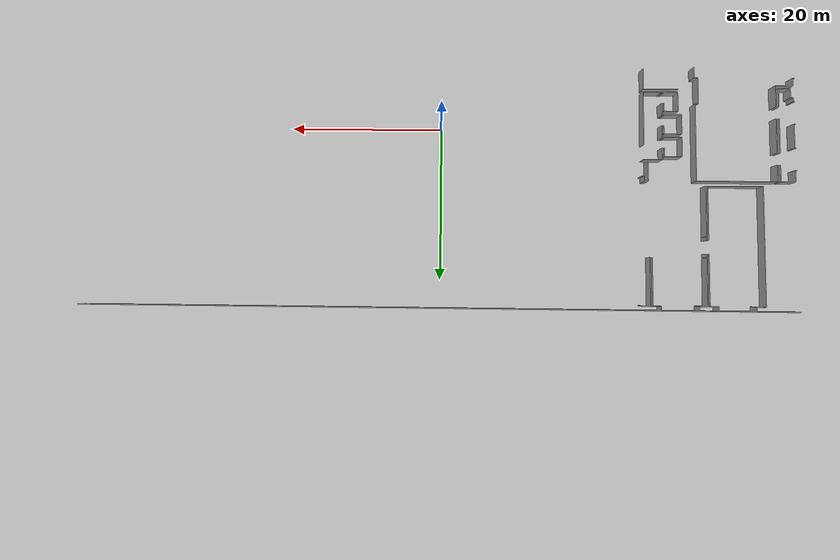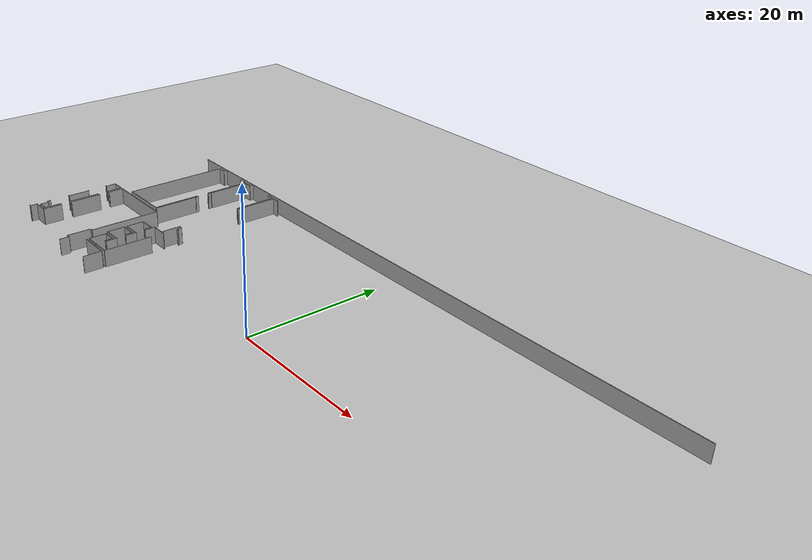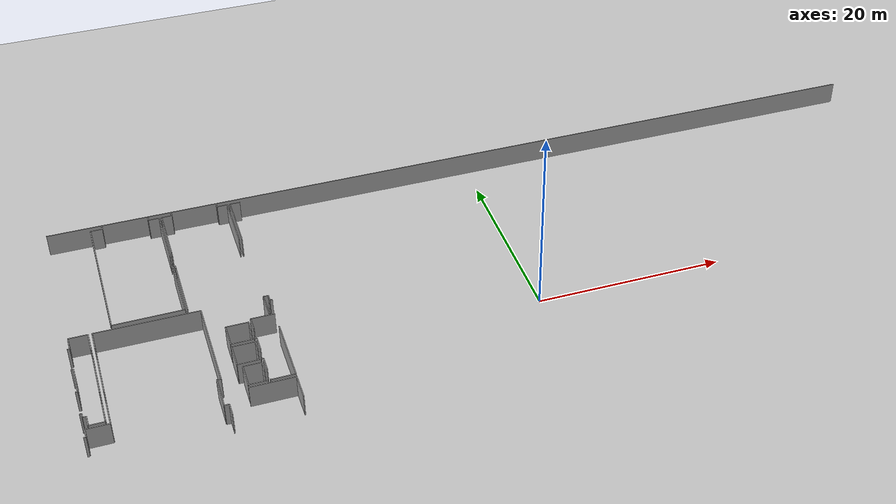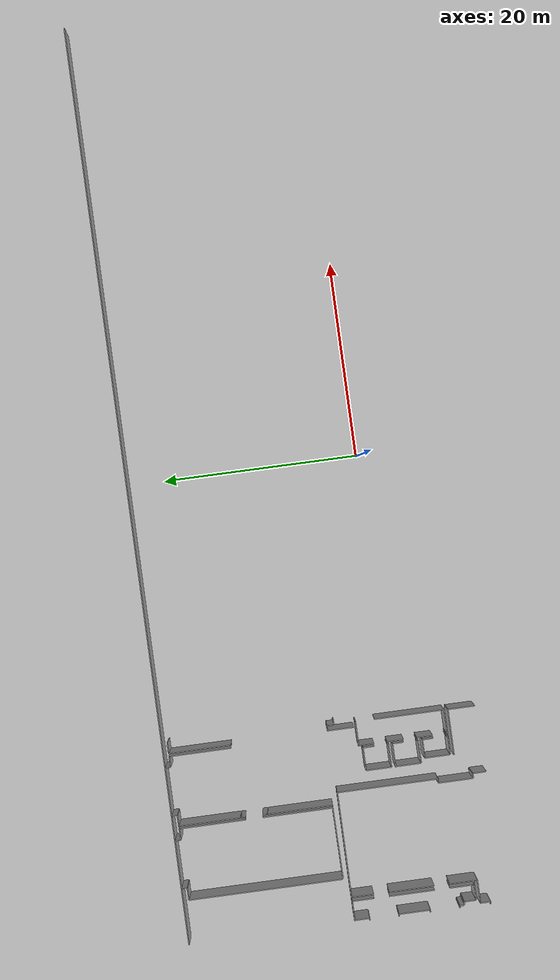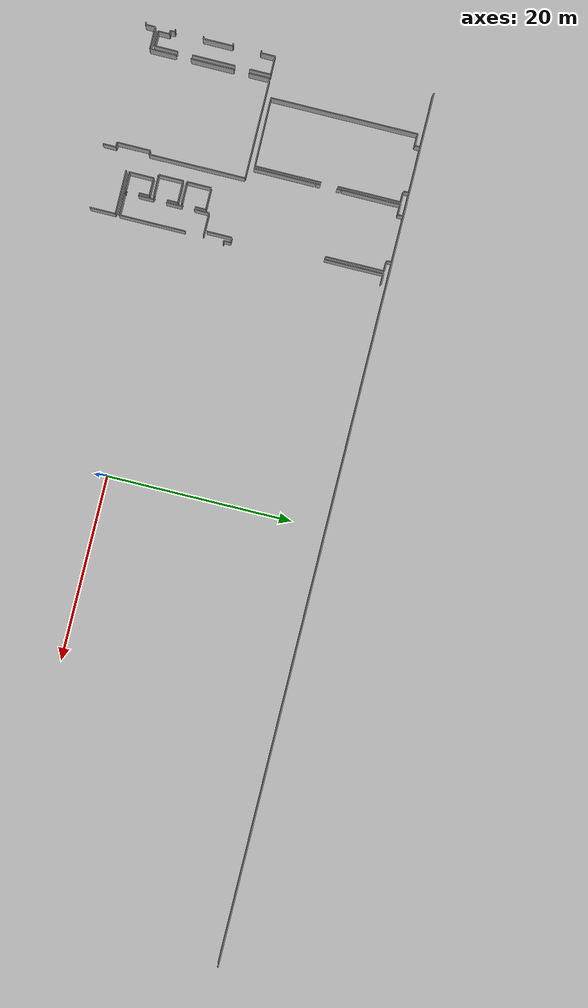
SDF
<sdf version="1.6">
 <world name="default">
  <model name="ground_plane">
   <static>1</static>
   <link name="link">
    <collision name="collision">
     <geometry><plane><normal>0 0 1</normal><size>100 100</size></plane></geometry>
     <surface><friction><ode><mu>100</mu><mu2>50</mu2></ode></friction></surface>
    </collision>
    <visual name="visual">
     <cast_shadows>0</cast_shadows>
     <geometry><plane><normal>0 0 1</normal><size>100 100</size></plane></geometry>
     <material>
      <script><uri>file://media/materials/scripts/gazebo.material</uri><name>Gazebo/Grey</name></script>
     </material>
    </visual>
   </link>
  </model>
  <model name="50045229">
   <static>1</static>
   <link name="Wall_0">
    <collision name="Wall_0_Collision">
     <geometry><box><size>15.8074096638 0.1 2.5</size></box></geometry>
     <pose>7.90370483189 0 1.25 0 0 0</pose>
    </collision>
    <visual name="Wall_0_Visual">
     <pose>7.90370483189 0 1.25 0 0 0</pose>
     <geometry><box><size>15.8074096638 0.1 2.5</size></box></geometry>
     <material>
      <script><uri>file://media/materials/scripts/gazebo.material</uri><name>Gazebo/Grey</name></script>
      <ambient>1 1 1 1</ambient>
     </material>
    </visual>
    <pose>4.53489700339 -16.4062242191 0 0 0 1.57079632679</pose>
   </link>
   <link name="Wall_1">
    <collision name="Wall_1_Collision">
     <geometry><box><size>1.24471690211 0.1 2.5</size></box></geometry>
     <pose>0.622358451053 0 1.25 0 0 0</pose>
    </collision>
    <visual name="Wall_1_Visual">
     <pose>0.622358451053 0 1.25 0 0 0</pose>
     <geometry><box><size>1.24471690211 0.1 2.5</size></box></geometry>
     <material>
      <script><uri>file://media/materials/scripts/gazebo.material</uri><name>Gazebo/Grey</name></script>
      <ambient>1 1 1 1</ambient>
     </material>
    </visual>
    <pose>4.53489700339 -0.598814555331 0 0 0 0.0</pose>
   </link>
   <link name="Wall_2">
    <collision name="Wall_2_Collision">
     <geometry><box><size>0.562895835713 0.1 2.5</size></box></geometry>
     <pose>0.281447917857 0 1.25 0 0 0</pose>
    </collision>
    <visual name="Wall_2_Visual">
     <pose>0.281447917857 0 1.25 0 0 0</pose>
     <geometry><box><size>0.562895835713 0.1 2.5</size></box></geometry>
     <material>
      <script><uri>file://media/materials/scripts/gazebo.material</uri><name>Gazebo/Grey</name></script>
      <ambient>1 1 1 1</ambient>
     </material>
    </visual>
    <pose>5.77961390549 -0.598814555331 0 0 0 1.57079632679</pose>
   </link>
   <link name="Wall_3">
    <collision name="Wall_3_Collision">
     <geometry><box><size>0.573937986267 0.1 2.5</size></box></geometry>
     <pose>0.286968993134 0 1.25 0 0 0</pose>
    </collision>
    <visual name="Wall_3_Visual">
     <pose>0.286968993134 0 1.25 0 0 0</pose>
     <geometry><box><size>0.573937986267 0.1 2.5</size></box></geometry>
     <material>
      <script><uri>file://media/materials/scripts/gazebo.material</uri><name>Gazebo/Grey</name></script>
      <ambient>1 1 1 1</ambient>
     </material>
    </visual>
    <pose>10.6908324766 -0.0359187196182 0 0 0 -1.57079632679</pose>
   </link>
   <link name="Wall_4">
    <collision name="Wall_4_Collision">
     <geometry><box><size>1.15891812309 0.1 2.5</size></box></geometry>
     <pose>0.579459061544 0 1.25 0 0 0</pose>
    </collision>
    <visual name="Wall_4_Visual">
     <pose>0.579459061544 0 1.25 0 0 0</pose>
     <geometry><box><size>1.15891812309 0.1 2.5</size></box></geometry>
     <material>
      <script><uri>file://media/materials/scripts/gazebo.material</uri><name>Gazebo/Grey</name></script>
      <ambient>1 1 1 1</ambient>
     </material>
    </visual>
    <pose>10.6908324766 -0.609856705885 0 0 0 0.0</pose>
   </link>
   <link name="Wall_5">
    <collision name="Wall_5_Collision">
     <geometry><box><size>6.79638020536 0.1 2.5</size></box></geometry>
     <pose>3.39819010268 0 1.25 0 0 0</pose>
    </collision>
    <visual name="Wall_5_Visual">
     <pose>3.39819010268 0 1.25 0 0 0</pose>
     <geometry><box><size>6.79638020536 0.1 2.5</size></box></geometry>
     <material>
      <script><uri>file://media/materials/scripts/gazebo.material</uri><name>Gazebo/Grey</name></script>
      <ambient>1 1 1 1</ambient>
     </material>
    </visual>
    <pose>11.8497505997 -0.609856705885 0 0 0 -1.57079632679</pose>
   </link>
   <link name="Wall_6">
    <collision name="Wall_6_Collision">
     <geometry><box><size>7.14858673165 0.1 2.5</size></box></geometry>
     <pose>3.57429336583 0 1.25 0 0 0</pose>
    </collision>
    <visual name="Wall_6_Visual">
     <pose>3.57429336583 0 1.25 0 0 0</pose>
     <geometry><box><size>7.14858673165 0.1 2.5</size></box></geometry>
     <material>
      <script><uri>file://media/materials/scripts/gazebo.material</uri><name>Gazebo/Grey</name></script>
      <ambient>1 1 1 1</ambient>
     </material>
    </visual>
    <pose>11.8497505997 -9.18846539492 0 0 0 -1.57079632679</pose>
   </link>
   <link name="Wall_7">
    <collision name="Wall_7_Collision">
     <geometry><box><size>7.31518064807 0.1 2.5</size></box></geometry>
     <pose>3.65759032404 0 1.25 0 0 0</pose>
    </collision>
    <visual name="Wall_7_Visual">
     <pose>3.65759032404 0 1.25 0 0 0</pose>
     <geometry><box><size>7.31518064807 0.1 2.5</size></box></geometry>
     <material>
      <script><uri>file://media/materials/scripts/gazebo.material</uri><name>Gazebo/Grey</name></script>
      <ambient>1 1 1 1</ambient>
     </material>
    </visual>
    <pose>11.8497505997 -16.3370521266 0 0 0 -3.13213654762</pose>
   </link>
   <link name="Wall_8">
    <collision name="Wall_8_Collision">
     <geometry><box><size>0.4605972915 0.1 2.5</size></box></geometry>
     <pose>0.23029864575 0 1.25 0 0 0</pose>
    </collision>
    <visual name="Wall_8_Visual">
     <pose>0.23029864575 0 1.25 0 0 0</pose>
     <geometry><box><size>0.4605972915 0.1 2.5</size></box></geometry>
     <material>
      <script><uri>file://media/materials/scripts/gazebo.material</uri><name>Gazebo/Grey</name></script>
      <ambient>1 1 1 1</ambient>
     </material>
    </visual>
    <pose>12.0963586287 -9.66277018366 0 0 0 1.57079632679</pose>
   </link>
   <link name="Wall_9">
    <collision name="Wall_9_Collision">
     <geometry><box><size>0.437878384038 0.1 2.5</size></box></geometry>
     <pose>0.218939192019 0 1.25 0 0 0</pose>
    </collision>
    <visual name="Wall_9_Visual">
     <pose>0.218939192019 0 1.25 0 0 0</pose>
     <geometry><box><size>0.437878384038 0.1 2.5</size></box></geometry>
     <material>
      <script><uri>file://media/materials/scripts/gazebo.material</uri><name>Gazebo/Grey</name></script>
      <ambient>1 1 1 1</ambient>
     </material>
    </visual>
    <pose>12.0963586287 -7.44431329246 0 0 0 1.57079632679</pose>
   </link>
   <link name="Wall_30">
    <collision name="Wall_30_Collision">
     <geometry><box><size>6.31687164452 0.1 2.5</size></box></geometry>
     <pose>3.15843582226 0 1.25 0 0 0</pose>
    </collision>
    <visual name="Wall_30_Visual">
     <pose>3.15843582226 0 1.25 0 0 0</pose>
     <geometry><box><size>6.31687164452 0.1 2.5</size></box></geometry>
     <material>
      <script><uri>file://media/materials/scripts/gazebo.material</uri><name>Gazebo/Grey</name></script>
      <ambient>1 1 1 1</ambient>
     </material>
    </visual>
    <pose>12.1024508497 -6.91568619985 0 0 0 1.57079632679</pose>
   </link>
   <link name="Wall_31">
    <collision name="Wall_31_Collision">
     <geometry><box><size>1.10472274048 0.1 2.5</size></box></geometry>
     <pose>0.552361370242 0 1.25 0 0 0</pose>
    </collision>
    <visual name="Wall_31_Visual">
     <pose>0.552361370242 0 1.25 0 0 0</pose>
     <geometry><box><size>1.10472274048 0.1 2.5</size></box></geometry>
     <material>
      <script><uri>file://media/materials/scripts/gazebo.material</uri><name>Gazebo/Grey</name></script>
      <ambient>1 1 1 1</ambient>
     </material>
    </visual>
    <pose>12.1024508497 -0.598814555331 0 0 0 0.0</pose>
   </link>
   <link name="Wall_32">
    <collision name="Wall_32_Collision">
     <geometry><box><size>0.562895835713 0.1 2.5</size></box></geometry>
     <pose>0.281447917857 0 1.25 0 0 0</pose>
    </collision>
    <visual name="Wall_32_Visual">
     <pose>0.281447917857 0 1.25 0 0 0</pose>
     <geometry><box><size>0.562895835713 0.1 2.5</size></box></geometry>
     <material>
      <script><uri>file://media/materials/scripts/gazebo.material</uri><name>Gazebo/Grey</name></script>
      <ambient>1 1 1 1</ambient>
     </material>
    </visual>
    <pose>13.2071735902 -0.598814555331 0 0 0 1.57079632679</pose>
   </link>
   <link name="Wall_33">
    <collision name="Wall_33_Collision">
     <geometry><box><size>0.538400030461 0.1 2.5</size></box></geometry>
     <pose>0.269200015231 0 1.25 0 0 0</pose>
    </collision>
    <visual name="Wall_33_Visual">
     <pose>0.269200015231 0 1.25 0 0 0</pose>
     <geometry><box><size>0.538400030461 0.1 2.5</size></box></geometry>
     <material>
      <script><uri>file://media/materials/scripts/gazebo.material</uri><name>Gazebo/Grey</name></script>
      <ambient>1 1 1 1</ambient>
     </material>
    </visual>
    <pose>18.1521532194 -0.0359187196182 0 0 0 -1.57079632679</pose>
   </link>
   <link name="Wall_34">
    <collision name="Wall_34_Collision">
     <geometry><box><size>1.10358044905 0.1 2.5</size></box></geometry>
     <pose>0.551790224524 0 1.25 0 0 0</pose>
    </collision>
    <visual name="Wall_34_Visual">
     <pose>0.551790224524 0 1.25 0 0 0</pose>
     <geometry><box><size>1.10358044905 0.1 2.5</size></box></geometry>
     <material>
      <script><uri>file://media/materials/scripts/gazebo.material</uri><name>Gazebo/Grey</name></script>
      <ambient>1 1 1 1</ambient>
     </material>
    </visual>
    <pose>18.1521532194 -0.574318750079 0 0 0 0.0</pose>
   </link>
   <link name="Wall_35">
    <collision name="Wall_35_Collision">
     <geometry><box><size>6.33667136275 0.1 2.5</size></box></geometry>
     <pose>3.16833568138 0 1.25 0 0 0</pose>
    </collision>
    <visual name="Wall_35_Visual">
     <pose>3.16833568138 0 1.25 0 0 0</pose>
     <geometry><box><size>6.33667136275 0.1 2.5</size></box></geometry>
     <material>
      <script><uri>file://media/materials/scripts/gazebo.material</uri><name>Gazebo/Grey</name></script>
      <ambient>1 1 1 1</ambient>
     </material>
    </visual>
    <pose>19.2557336684 -0.574318750079 0 0 0 -1.57079632679</pose>
   </link>
   <link name="Wall_36">
    <collision name="Wall_36_Collision">
     <geometry><box><size>6.35494802574 0.1 2.5</size></box></geometry>
     <pose>3.17747401287 0 1.25 0 0 0</pose>
    </collision>
    <visual name="Wall_36_Visual">
     <pose>3.17747401287 0 1.25 0 0 0</pose>
     <geometry><box><size>6.35494802574 0.1 2.5</size></box></geometry>
     <material>
      <script><uri>file://media/materials/scripts/gazebo.material</uri><name>Gazebo/Grey</name></script>
      <ambient>1 1 1 1</ambient>
     </material>
    </visual>
    <pose>19.547144906 -6.92825140565 0 0 0 1.57079632679</pose>
   </link>
   <link name="Wall_37">
    <collision name="Wall_37_Collision">
     <geometry><box><size>1.09647285789 0.1 2.5</size></box></geometry>
     <pose>0.548236428943 0 1.25 0 0 0</pose>
    </collision>
    <visual name="Wall_37_Visual">
     <pose>0.548236428943 0 1.25 0 0 0</pose>
     <geometry><box><size>1.09647285789 0.1 2.5</size></box></geometry>
     <material>
      <script><uri>file://media/materials/scripts/gazebo.material</uri><name>Gazebo/Grey</name></script>
      <ambient>1 1 1 1</ambient>
     </material>
    </visual>
    <pose>19.547144906 -0.573303379913 0 0 0 0.0</pose>
   </link>
   <link name="Wall_133">
    <collision name="Wall_133_Collision">
     <geometry><box><size>6.6374747744 0.1 2.5</size></box></geometry>
     <pose>3.3187373872 0 1.25 0 0 0</pose>
    </collision>
    <visual name="Wall_133_Visual">
     <pose>3.3187373872 0 1.25 0 0 0</pose>
     <geometry><box><size>6.6374747744 0.1 2.5</size></box></geometry>
     <material>
      <script><uri>file://media/materials/scripts/gazebo.material</uri><name>Gazebo/Grey</name></script>
      <ambient>1 1 1 1</ambient>
     </material>
    </visual>
    <pose>12.0963586287 -16.3615479318 0 0 0 1.57079632679</pose>
   </link>
   <link name="Wall_136">
    <collision name="Wall_136_Collision">
     <geometry><box><size>1.23050171978 0.1 2.5</size></box></geometry>
     <pose>0.615250859892 0 1.25 0 0 0</pose>
    </collision>
    <visual name="Wall_136_Visual">
     <pose>0.615250859892 0 1.25 0 0 0</pose>
     <geometry><box><size>1.23050171978 0.1 2.5</size></box></geometry>
     <material>
      <script><uri>file://media/materials/scripts/gazebo.material</uri><name>Gazebo/Grey</name></script>
      <ambient>1 1 1 1</ambient>
     </material>
    </visual>
    <pose>0.603383721078 -29.514779982 0 0 0 1.57079632679</pose>
   </link>
   <link name="Wall_137">
    <collision name="Wall_137_Collision">
     <geometry><box><size>0.352841132645 0.1 2.5</size></box></geometry>
     <pose>0.176420566323 0 1.25 0 0 0</pose>
    </collision>
    <visual name="Wall_137_Visual">
     <pose>0.176420566323 0 1.25 0 0 0</pose>
     <geometry><box><size>0.352841132645 0.1 2.5</size></box></geometry>
     <material>
      <script><uri>file://media/materials/scripts/gazebo.material</uri><name>Gazebo/Grey</name></script>
      <ambient>1 1 1 1</ambient>
     </material>
    </visual>
    <pose>0.603383721078 -28.2842782622 0 0 0 3.14159265359</pose>
   </link>
   <link name="Wall_138">
    <collision name="Wall_138_Collision">
     <geometry><box><size>0.499308279074 0.1 2.5</size></box></geometry>
     <pose>0.249654139537 0 1.25 0 0 0</pose>
    </collision>
    <visual name="Wall_138_Visual">
     <pose>0.249654139537 0 1.25 0 0 0</pose>
     <geometry><box><size>0.499308279074 0.1 2.5</size></box></geometry>
     <material>
      <script><uri>file://media/materials/scripts/gazebo.material</uri><name>Gazebo/Grey</name></script>
      <ambient>1 1 1 1</ambient>
     </material>
    </visual>
    <pose>0.250542588432 -28.2842782622 0 0 0 1.57079632679</pose>
   </link>
   <link name="Wall_139">
    <collision name="Wall_139_Collision">
     <geometry><box><size>0.232139004176 0.1 2.5</size></box></geometry>
     <pose>0.116069502088 0 1.25 0 0 0</pose>
    </collision>
    <visual name="Wall_139_Visual">
     <pose>0.116069502088 0 1.25 0 0 0</pose>
     <geometry><box><size>0.232139004176 0.1 2.5</size></box></geometry>
     <material>
      <script><uri>file://media/materials/scripts/gazebo.material</uri><name>Gazebo/Grey</name></script>
      <ambient>1 1 1 1</ambient>
     </material>
    </visual>
    <pose>0.250542588432 -27.7849699831 0 0 0 3.14159265359</pose>
   </link>
   <link name="Wall_140">
    <collision name="Wall_140_Collision">
     <geometry><box><size>0.222239145058 0.1 2.5</size></box></geometry>
     <pose>0.111119572529 0 1.25 0 0 0</pose>
    </collision>
    <visual name="Wall_140_Visual">
     <pose>0.111119572529 0 1.25 0 0 0</pose>
     <geometry><box><size>0.222239145058 0.1 2.5</size></box></geometry>
     <material>
      <script><uri>file://media/materials/scripts/gazebo.material</uri><name>Gazebo/Grey</name></script>
      <ambient>1 1 1 1</ambient>
     </material>
    </visual>
    <pose>0.0184035842567 -24.7396210131 0 0 0 0.0</pose>
   </link>
   <link name="Wall_141">
    <collision name="Wall_141_Collision">
     <geometry><box><size>3.18242394243 0.1 2.5</size></box></geometry>
     <pose>1.59121197121 0 1.25 0 0 0</pose>
    </collision>
    <visual name="Wall_141_Visual">
     <pose>1.59121197121 0 1.25 0 0 0</pose>
     <geometry><box><size>3.18242394243 0.1 2.5</size></box></geometry>
     <material>
      <script><uri>file://media/materials/scripts/gazebo.material</uri><name>Gazebo/Grey</name></script>
      <ambient>1 1 1 1</ambient>
     </material>
    </visual>
    <pose>0.240642729315 -24.7396210131 0 0 0 1.57079632679</pose>
   </link>
   <link name="Wall_142">
    <collision name="Wall_142_Collision">
     <geometry><box><size>0.240642729315 0.1 2.5</size></box></geometry>
     <pose>0.120321364658 0 1.25 0 0 0</pose>
    </collision>
    <visual name="Wall_142_Visual">
     <pose>0.120321364658 0 1.25 0 0 0</pose>
     <geometry><box><size>0.240642729315 0.1 2.5</size></box></geometry>
     <material>
      <script><uri>file://media/materials/scripts/gazebo.material</uri><name>Gazebo/Grey</name></script>
      <ambient>1 1 1 1</ambient>
     </material>
    </visual>
    <pose>0.240642729315 -21.5571970707 0 0 0 3.14159265359</pose>
   </link>
   <link name="Wall_143">
    <collision name="Wall_143_Collision">
     <geometry><box><size>0.232012082905 0.1 2.5</size></box></geometry>
     <pose>0.116006041452 0 1.25 0 0 0</pose>
    </collision>
    <visual name="Wall_143_Visual">
     <pose>0.116006041452 0 1.25 0 0 0</pose>
     <geometry><box><size>0.232012082905 0.1 2.5</size></box></geometry>
     <material>
      <script><uri>file://media/materials/scripts/gazebo.material</uri><name>Gazebo/Grey</name></script>
      <ambient>1 1 1 1</ambient>
     </material>
    </visual>
    <pose>0.0 -18.5345670081 0 0 0 0.0</pose>
   </link>
   <link name="Wall_144">
    <collision name="Wall_144_Collision">
     <geometry><box><size>1.51556689386 0.1 2.5</size></box></geometry>
     <pose>0.757783446928 0 1.25 0 0 0</pose>
    </collision>
    <visual name="Wall_144_Visual">
     <pose>0.757783446928 0 1.25 0 0 0</pose>
     <geometry><box><size>1.51556689386 0.1 2.5</size></box></geometry>
     <material>
      <script><uri>file://media/materials/scripts/gazebo.material</uri><name>Gazebo/Grey</name></script>
      <ambient>1 1 1 1</ambient>
     </material>
    </visual>
    <pose>0.232012082905 -18.5345670081 0 0 0 1.57079632679</pose>
   </link>
   <link name="Wall_145">
    <collision name="Wall_145_Collision">
     <geometry><box><size>1.95242990773 0.1 2.5</size></box></geometry>
     <pose>0.976214953864 0 1.25 0 0 0</pose>
    </collision>
    <visual name="Wall_145_Visual">
     <pose>0.976214953864 0 1.25 0 0 0</pose>
     <geometry><box><size>1.95242990773 0.1 2.5</size></box></geometry>
     <material>
      <script><uri>file://media/materials/scripts/gazebo.material</uri><name>Gazebo/Grey</name></script>
      <ambient>1 1 1 1</ambient>
     </material>
    </visual>
    <pose>0.232012082905 -17.0190001142 0 0 0 0.0</pose>
   </link>
   <link name="Wall_146">
    <collision name="Wall_146_Collision">
     <geometry><box><size>2.25285255556 0.1 2.5</size></box></geometry>
     <pose>1.12642627778 0 1.25 0 0 0</pose>
    </collision>
    <visual name="Wall_146_Visual">
     <pose>1.12642627778 0 1.25 0 0 0</pose>
     <geometry><box><size>2.25285255556 0.1 2.5</size></box></geometry>
     <material>
      <script><uri>file://media/materials/scripts/gazebo.material</uri><name>Gazebo/Grey</name></script>
      <ambient>1 1 1 1</ambient>
     </material>
    </visual>
    <pose>2.18444199063 -17.0190001142 0 0 0 -1.57079632679</pose>
   </link>
   <link name="Wall_147">
    <collision name="Wall_147_Collision">
     <geometry><box><size>4.63656094125 0.1 2.5</size></box></geometry>
     <pose>2.31828047062 0 1.25 0 0 0</pose>
    </collision>
    <visual name="Wall_147_Visual">
     <pose>2.31828047062 0 1.25 0 0 0</pose>
     <geometry><box><size>4.63656094125 0.1 2.5</size></box></geometry>
     <material>
      <script><uri>file://media/materials/scripts/gazebo.material</uri><name>Gazebo/Grey</name></script>
      <ambient>1 1 1 1</ambient>
     </material>
    </visual>
    <pose>2.18444199063 -20.821815228 0 0 0 -1.57079632679</pose>
   </link>
   <link name="Wall_148">
    <collision name="Wall_148_Collision">
     <geometry><box><size>2.49171838708 0.1 2.5</size></box></geometry>
     <pose>1.24585919354 0 1.25 0 0 0</pose>
    </collision>
    <visual name="Wall_148_Visual">
     <pose>1.24585919354 0 1.25 0 0 0</pose>
     <geometry><box><size>2.49171838708 0.1 2.5</size></box></geometry>
     <material>
      <script><uri>file://media/materials/scripts/gazebo.material</uri><name>Gazebo/Grey</name></script>
      <ambient>1 1 1 1</ambient>
     </material>
    </visual>
    <pose>2.18444199063 -27.0143040272 0 0 0 -1.57079632679</pose>
   </link>
   <link name="Wall_149">
    <collision name="Wall_149_Collision">
     <geometry><box><size>1.58108252369 0.1 2.5</size></box></geometry>
     <pose>0.790541261846 0 1.25 0 0 0</pose>
    </collision>
    <visual name="Wall_149_Visual">
     <pose>0.790541261846 0 1.25 0 0 0</pose>
     <geometry><box><size>1.58108252369 0.1 2.5</size></box></geometry>
     <material>
      <script><uri>file://media/materials/scripts/gazebo.material</uri><name>Gazebo/Grey</name></script>
      <ambient>1 1 1 1</ambient>
     </material>
    </visual>
    <pose>2.18444199063 -29.5060224143 0 0 0 -3.13605365589</pose>
   </link>
   <link name="Wall_155">
    <collision name="Wall_155_Collision">
     <geometry><box><size>0.233662059425 0.1 2.5</size></box></geometry>
     <pose>0.116831029712 0 1.25 0 0 0</pose>
    </collision>
    <visual name="Wall_155_Visual">
     <pose>0.116831029712 0 1.25 0 0 0</pose>
     <geometry><box><size>0.233662059425 0.1 2.5</size></box></geometry>
     <material>
      <script><uri>file://media/materials/scripts/gazebo.material</uri><name>Gazebo/Grey</name></script>
      <ambient>1 1 1 1</ambient>
     </material>
    </visual>
    <pose>0.0140882610517 -30.928682938 0 0 0 0.0</pose>
   </link>
   <link name="Wall_156">
    <collision name="Wall_156_Collision">
     <geometry><box><size>1.03478912031 0.1 2.5</size></box></geometry>
     <pose>0.517394560154 0 1.25 0 0 0</pose>
    </collision>
    <visual name="Wall_156_Visual">
     <pose>0.517394560154 0 1.25 0 0 0</pose>
     <geometry><box><size>1.03478912031 0.1 2.5</size></box></geometry>
     <material>
      <script><uri>file://media/materials/scripts/gazebo.material</uri><name>Gazebo/Grey</name></script>
      <ambient>1 1 1 1</ambient>
     </material>
    </visual>
    <pose>0.247750320476 -30.928682938 0 0 0 1.57079632679</pose>
   </link>
   <link name="Wall_157">
    <collision name="Wall_157_Collision">
     <geometry><box><size>2.33662059425 0.1 2.5</size></box></geometry>
     <pose>1.16831029712 0 1.25 0 0 0</pose>
    </collision>
    <visual name="Wall_157_Visual">
     <pose>1.16831029712 0 1.25 0 0 0</pose>
     <geometry><box><size>2.33662059425 0.1 2.5</size></box></geometry>
     <material>
      <script><uri>file://media/materials/scripts/gazebo.material</uri><name>Gazebo/Grey</name></script>
      <ambient>1 1 1 1</ambient>
     </material>
    </visual>
    <pose>0.247750320476 -29.8938938177 0 0 0 0.0</pose>
   </link>
   <link name="Wall_158">
    <collision name="Wall_158_Collision">
     <geometry><box><size>2.84582873244 0.1 2.5</size></box></geometry>
     <pose>1.42291436622 0 1.25 0 0 0</pose>
    </collision>
    <visual name="Wall_158_Visual">
     <pose>1.42291436622 0 1.25 0 0 0</pose>
     <geometry><box><size>2.84582873244 0.1 2.5</size></box></geometry>
     <material>
      <script><uri>file://media/materials/scripts/gazebo.material</uri><name>Gazebo/Grey</name></script>
      <ambient>1 1 1 1</ambient>
     </material>
    </visual>
    <pose>2.58437091472 -29.8938938177 0 0 0 1.57079632679</pose>
   </link>
   <link name="Wall_159">
    <collision name="Wall_159_Collision">
     <geometry><box><size>4.6319917755 0.1 2.5</size></box></geometry>
     <pose>2.31599588775 0 1.25 0 0 0</pose>
    </collision>
    <visual name="Wall_159_Visual">
     <pose>2.31599588775 0 1.25 0 0 0</pose>
     <geometry><box><size>4.6319917755 0.1 2.5</size></box></geometry>
     <material>
      <script><uri>file://media/materials/scripts/gazebo.material</uri><name>Gazebo/Grey</name></script>
      <ambient>1 1 1 1</ambient>
     </material>
    </visual>
    <pose>2.58437091472 -25.4753836195 0 0 0 1.57079632679</pose>
   </link>
   <link name="Wall_160">
    <collision name="Wall_160_Collision">
     <geometry><box><size>2.27455609286 0.1 2.5</size></box></geometry>
     <pose>1.13727804643 0 1.25 0 0 0</pose>
    </collision>
    <visual name="Wall_160_Visual">
     <pose>1.13727804643 0 1.25 0 0 0</pose>
     <geometry><box><size>2.27455609286 0.1 2.5</size></box></geometry>
     <material>
      <script><uri>file://media/materials/scripts/gazebo.material</uri><name>Gazebo/Grey</name></script>
      <ambient>1 1 1 1</ambient>
     </material>
    </visual>
    <pose>2.58437091472 -19.2790871822 0 0 0 1.57079632679</pose>
   </link>
   <link name="Wall_161">
    <collision name="Wall_161_Collision">
     <geometry><box><size>10.7315742045 0.1 2.5</size></box></geometry>
     <pose>5.36578710226 0 1.25 0 0 0</pose>
    </collision>
    <visual name="Wall_161_Visual">
     <pose>5.36578710226 0 1.25 0 0 0</pose>
     <geometry><box><size>10.7315742045 0.1 2.5</size></box></geometry>
     <material>
      <script><uri>file://media/materials/scripts/gazebo.material</uri><name>Gazebo/Grey</name></script>
      <ambient>1 1 1 1</ambient>
     </material>
    </visual>
    <pose>2.58437091472 -17.0045310894 0 0 0 0.0</pose>
   </link>
   <link name="Wall_162">
    <collision name="Wall_162_Collision">
     <geometry><box><size>10.3194608384 0.1 2.5</size></box></geometry>
     <pose>5.15973041922 0 1.25 0 0 0</pose>
    </collision>
    <visual name="Wall_162_Visual">
     <pose>5.15973041922 0 1.25 0 0 0</pose>
     <geometry><box><size>10.3194608384 0.1 2.5</size></box></geometry>
     <material>
      <script><uri>file://media/materials/scripts/gazebo.material</uri><name>Gazebo/Grey</name></script>
      <ambient>1 1 1 1</ambient>
     </material>
    </visual>
    <pose>13.3159451192 -17.0045310894 0 0 0 -1.57079632679</pose>
   </link>
   <link name="Wall_163">
    <collision name="Wall_163_Collision">
     <geometry><box><size>0.417570980721 0.1 2.5</size></box></geometry>
     <pose>0.20878549036 0 1.25 0 0 0</pose>
    </collision>
    <visual name="Wall_163_Visual">
     <pose>0.20878549036 0 1.25 0 0 0</pose>
     <geometry><box><size>0.417570980721 0.1 2.5</size></box></geometry>
     <material>
      <script><uri>file://media/materials/scripts/gazebo.material</uri><name>Gazebo/Grey</name></script>
      <ambient>1 1 1 1</ambient>
     </material>
    </visual>
    <pose>13.3159451192 -27.3239919278 0 0 0 3.14159265359</pose>
   </link>
   <link name="Wall_164">
    <collision name="Wall_164_Collision">
     <geometry><box><size>3.55938011651 0.1 2.5</size></box></geometry>
     <pose>1.77969005826 0 1.25 0 0 0</pose>
    </collision>
    <visual name="Wall_164_Visual">
     <pose>1.77969005826 0 1.25 0 0 0</pose>
     <geometry><box><size>3.55938011651 0.1 2.5</size></box></geometry>
     <material>
      <script><uri>file://media/materials/scripts/gazebo.material</uri><name>Gazebo/Grey</name></script>
      <ambient>1 1 1 1</ambient>
     </material>
    </visual>
    <pose>12.8983741385 -27.3239919278 0 0 0 -1.57079632679</pose>
   </link>
   <link name="Wall_165">
    <collision name="Wall_165_Collision">
     <geometry><box><size>0.496516011118 0.1 2.5</size></box></geometry>
     <pose>0.248258005559 0 1.25 0 0 0</pose>
    </collision>
    <visual name="Wall_165_Visual">
     <pose>0.248258005559 0 1.25 0 0 0</pose>
     <geometry><box><size>0.496516011118 0.1 2.5</size></box></geometry>
     <material>
      <script><uri>file://media/materials/scripts/gazebo.material</uri><name>Gazebo/Grey</name></script>
      <ambient>1 1 1 1</ambient>
     </material>
    </visual>
    <pose>12.8983741385 -30.8833720443 0 0 0 0.0</pose>
   </link>
   <link name="Wall_166">
    <collision name="Wall_166_Collision">
     <geometry><box><size>1.40159159274 0.1 2.5</size></box></geometry>
     <pose>0.700795796368 0 1.25 0 0 0</pose>
    </collision>
    <visual name="Wall_166_Visual">
     <pose>0.700795796368 0 1.25 0 0 0</pose>
     <geometry><box><size>1.40159159274 0.1 2.5</size></box></geometry>
     <material>
      <script><uri>file://media/materials/scripts/gazebo.material</uri><name>Gazebo/Grey</name></script>
      <ambient>1 1 1 1</ambient>
     </material>
    </visual>
    <pose>13.3948901496 -30.8833720443 0 0 0 -1.57079632679</pose>
   </link>
   <link name="Wall_183">
    <collision name="Wall_183_Collision">
     <geometry><box><size>4.64646080037 0.1 2.5</size></box></geometry>
     <pose>2.32323040018 0 1.25 0 0 0</pose>
    </collision>
    <visual name="Wall_183_Visual">
     <pose>2.32323040018 0 1.25 0 0 0</pose>
     <geometry><box><size>4.64646080037 0.1 2.5</size></box></geometry>
     <material>
      <script><uri>file://media/materials/scripts/gazebo.material</uri><name>Gazebo/Grey</name></script>
      <ambient>1 1 1 1</ambient>
     </material>
    </visual>
    <pose>15.5248829151 -29.2609374405 0 0 0 0.0</pose>
   </link>
   <link name="Wall_184">
    <collision name="Wall_184_Collision">
     <geometry><box><size>2.76307606392 0.1 2.5</size></box></geometry>
     <pose>1.38153803196 0 1.25 0 0 0</pose>
    </collision>
    <visual name="Wall_184_Visual">
     <pose>1.38153803196 0 1.25 0 0 0</pose>
     <geometry><box><size>2.76307606392 0.1 2.5</size></box></geometry>
     <material>
      <script><uri>file://media/materials/scripts/gazebo.material</uri><name>Gazebo/Grey</name></script>
      <ambient>1 1 1 1</ambient>
     </material>
    </visual>
    <pose>20.1713437155 -29.2609374405 0 0 0 -1.57079632679</pose>
   </link>
   <link name="Wall_236">
    <collision name="Wall_236_Collision">
     <geometry><box><size>2.68717714402 0.1 2.5</size></box></geometry>
     <pose>1.34358857201 0 1.25 0 0 0</pose>
    </collision>
    <visual name="Wall_236_Visual">
     <pose>1.34358857201 0 1.25 0 0 0</pose>
     <geometry><box><size>2.68717714402 0.1 2.5</size></box></geometry>
     <material>
      <script><uri>file://media/materials/scripts/gazebo.material</uri><name>Gazebo/Grey</name></script>
      <ambient>1 1 1 1</ambient>
     </material>
    </visual>
    <pose>19.6684816408 -19.5574255289 0 0 0 1.57079632679</pose>
   </link>
   <link name="Wall_237">
    <collision name="Wall_237_Collision">
     <geometry><box><size>0.518219548414 0.1 2.5</size></box></geometry>
     <pose>0.259109774207 0 1.25 0 0 0</pose>
    </collision>
    <visual name="Wall_237_Visual">
     <pose>0.259109774207 0 1.25 0 0 0</pose>
     <geometry><box><size>0.518219548414 0.1 2.5</size></box></geometry>
     <material>
      <script><uri>file://media/materials/scripts/gazebo.material</uri><name>Gazebo/Grey</name></script>
      <ambient>1 1 1 1</ambient>
     </material>
    </visual>
    <pose>19.6684816408 -16.8702483849 0 0 0 0.0</pose>
   </link>
   <link name="Wall_238">
    <collision name="Wall_238_Collision">
     <geometry><box><size>0.719770526343 0.1 2.5</size></box></geometry>
     <pose>0.359885263171 0 1.25 0 0 0</pose>
    </collision>
    <visual name="Wall_238_Visual">
     <pose>0.359885263171 0 1.25 0 0 0</pose>
     <geometry><box><size>0.719770526343 0.1 2.5</size></box></geometry>
     <material>
      <script><uri>file://media/materials/scripts/gazebo.material</uri><name>Gazebo/Grey</name></script>
      <ambient>1 1 1 1</ambient>
     </material>
    </visual>
    <pose>20.1867011893 -16.8702483849 0 0 0 -1.57079632679</pose>
   </link>
   <link name="Wall_239">
    <collision name="Wall_239_Collision">
     <geometry><box><size>0.268692330148 0.1 2.5</size></box></geometry>
     <pose>0.134346165074 0 1.25 0 0 0</pose>
    </collision>
    <visual name="Wall_239_Visual">
     <pose>0.134346165074 0 1.25 0 0 0</pose>
     <geometry><box><size>0.268692330148 0.1 2.5</size></box></geometry>
     <material>
      <script><uri>file://media/materials/scripts/gazebo.material</uri><name>Gazebo/Grey</name></script>
      <ambient>1 1 1 1</ambient>
     </material>
    </visual>
    <pose>20.1867011893 -17.5900189113 0 0 0 0.0</pose>
   </link>
   <link name="Wall_243">
    <collision name="Wall_243_Collision">
     <geometry><box><size>0.116132962723 0.1 2.5</size></box></geometry>
     <pose>0.0580664813616 0 1.25 0 0 0</pose>
    </collision>
    <visual name="Wall_243_Visual">
     <pose>0.0580664813616 0 1.25 0 0 0</pose>
     <geometry><box><size>0.116132962723 0.1 2.5</size></box></geometry>
     <material>
      <script><uri>file://media/materials/scripts/gazebo.material</uri><name>Gazebo/Grey</name></script>
      <ambient>1 1 1 1</ambient>
     </material>
    </visual>
    <pose>17.7409283022 -28.8891850385 0 0 0 1.57079632679</pose>
   </link>
   <link name="Wall_244">
    <collision name="Wall_244_Collision">
     <geometry><box><size>1.62243460382 0.1 2.5</size></box></geometry>
     <pose>0.811217301908 0 1.25 0 0 0</pose>
    </collision>
    <visual name="Wall_244_Visual">
     <pose>0.811217301908 0 1.25 0 0 0</pose>
     <geometry><box><size>1.62243460382 0.1 2.5</size></box></geometry>
     <material>
      <script><uri>file://media/materials/scripts/gazebo.material</uri><name>Gazebo/Grey</name></script>
      <ambient>1 1 1 1</ambient>
     </material>
    </visual>
    <pose>17.7409283022 -27.3737450659 0 0 0 1.57079632679</pose>
   </link>
   <link name="Wall_245">
    <collision name="Wall_245_Collision">
     <geometry><box><size>1.68576831791 0.1 2.5</size></box></geometry>
     <pose>0.842884158956 0 1.25 0 0 0</pose>
    </collision>
    <visual name="Wall_245_Visual">
     <pose>0.842884158956 0 1.25 0 0 0</pose>
     <geometry><box><size>1.68576831791 0.1 2.5</size></box></geometry>
     <material>
      <script><uri>file://media/materials/scripts/gazebo.material</uri><name>Gazebo/Grey</name></script>
      <ambient>1 1 1 1</ambient>
     </material>
    </visual>
    <pose>17.7409283022 -24.3942682354 0 0 0 1.57079632679</pose>
   </link>
   <link name="Wall_246">
    <collision name="Wall_246_Collision">
     <geometry><box><size>1.57725063143 0.1 2.5</size></box></geometry>
     <pose>0.788625315717 0 1.25 0 0 0</pose>
    </collision>
    <visual name="Wall_246_Visual">
     <pose>0.788625315717 0 1.25 0 0 0</pose>
     <geometry><box><size>1.57725063143 0.1 2.5</size></box></geometry>
     <material>
      <script><uri>file://media/materials/scripts/gazebo.material</uri><name>Gazebo/Grey</name></script>
      <ambient>1 1 1 1</ambient>
     </material>
    </visual>
    <pose>17.7409283022 -21.3732881494 0 0 0 1.57079632679</pose>
   </link>
   <link name="Wall_247">
    <collision name="Wall_247_Collision">
     <geometry><box><size>2.45199202934 0.1 2.5</size></box></geometry>
     <pose>1.22599601467 0 1.25 0 0 0</pose>
    </collision>
    <visual name="Wall_247_Visual">
     <pose>1.22599601467 0 1.25 0 0 0</pose>
     <geometry><box><size>2.45199202934 0.1 2.5</size></box></geometry>
     <material>
      <script><uri>file://media/materials/scripts/gazebo.material</uri><name>Gazebo/Grey</name></script>
      <ambient>1 1 1 1</ambient>
     </material>
    </visual>
    <pose>17.7409283022 -19.7960375179 0 0 0 0.0</pose>
   </link>
   <link name="Wall_249">
    <collision name="Wall_249_Collision">
     <geometry><box><size>7.12155250098 0.1 2.5</size></box></geometry>
     <pose>3.56077625049 0 1.25 0 0 0</pose>
    </collision>
    <visual name="Wall_249_Visual">
     <pose>3.56077625049 0 1.25 0 0 0</pose>
     <geometry><box><size>7.12155250098 0.1 2.5</size></box></geometry>
     <material>
      <script><uri>file://media/materials/scripts/gazebo.material</uri><name>Gazebo/Grey</name></script>
      <ambient>1 1 1 1</ambient>
     </material>
    </visual>
    <pose>20.1929203315 -21.7450405513 0 0 0 -1.57079632679</pose>
   </link>
   <link name="Wall_250">
    <collision name="Wall_250_Collision">
     <geometry><box><size>2.45209610534 0.1 2.5</size></box></geometry>
     <pose>1.22604805267 0 1.25 0 0 0</pose>
    </collision>
    <visual name="Wall_250_Visual">
     <pose>1.22604805267 0 1.25 0 0 0</pose>
     <geometry><box><size>2.45209610534 0.1 2.5</size></box></geometry>
     <material>
      <script><uri>file://media/materials/scripts/gazebo.material</uri><name>Gazebo/Grey</name></script>
      <ambient>1 1 1 1</ambient>
     </material>
    </visual>
    <pose>20.1929203315 -28.8665930523 0 0 0 -3.13237918688</pose>
   </link>
   <link name="Wall_251">
    <collision name="Wall_251_Collision">
     <geometry><box><size>2.60696290091 0.1 2.5</size></box></geometry>
     <pose>1.30348145046 0 1.25 0 0 0</pose>
    </collision>
    <visual name="Wall_251_Visual">
     <pose>1.30348145046 0 1.25 0 0 0</pose>
     <geometry><box><size>2.60696290091 0.1 2.5</size></box></geometry>
     <material>
      <script><uri>file://media/materials/scripts/gazebo.material</uri><name>Gazebo/Grey</name></script>
      <ambient>1 1 1 1</ambient>
     </material>
    </visual>
    <pose>15.1441191029 -22.817017604 0 0 0 1.57079632679</pose>
   </link>
   <link name="Wall_252">
    <collision name="Wall_252_Collision">
     <geometry><box><size>2.33547830281 0.1 2.5</size></box></geometry>
     <pose>1.1677391514 0 1.25 0 0 0</pose>
    </collision>
    <visual name="Wall_252_Visual">
     <pose>1.1677391514 0 1.25 0 0 0</pose>
     <geometry><box><size>2.33547830281 0.1 2.5</size></box></geometry>
     <material>
      <script><uri>file://media/materials/scripts/gazebo.material</uri><name>Gazebo/Grey</name></script>
      <ambient>1 1 1 1</ambient>
     </material>
    </visual>
    <pose>15.1441191029 -20.2100547031 0 0 0 0.0</pose>
   </link>
   <link name="Wall_253">
    <collision name="Wall_253_Collision">
     <geometry><box><size>1.13924532612 0.1 2.5</size></box></geometry>
     <pose>0.569622663062 0 1.25 0 0 0</pose>
    </collision>
    <visual name="Wall_253_Visual">
     <pose>0.569622663062 0 1.25 0 0 0</pose>
     <geometry><box><size>1.13924532612 0.1 2.5</size></box></geometry>
     <material>
      <script><uri>file://media/materials/scripts/gazebo.material</uri><name>Gazebo/Grey</name></script>
      <ambient>1 1 1 1</ambient>
     </material>
    </visual>
    <pose>17.4795974057 -20.2100547031 0 0 0 -1.57079632679</pose>
   </link>
   <link name="Wall_254">
    <collision name="Wall_254_Collision">
     <geometry><box><size>0.15357473759 0.1 2.5</size></box></geometry>
     <pose>0.0767873687951 0 1.25 0 0 0</pose>
    </collision>
    <visual name="Wall_254_Visual">
     <pose>0.0767873687951 0 1.25 0 0 0</pose>
     <geometry><box><size>0.15357473759 0.1 2.5</size></box></geometry>
     <material>
      <script><uri>file://media/materials/scripts/gazebo.material</uri><name>Gazebo/Grey</name></script>
      <ambient>1 1 1 1</ambient>
     </material>
    </visual>
    <pose>17.4795974057 -22.6668697407 0 0 0 -1.57079632679</pose>
   </link>
   <link name="Wall_255">
    <collision name="Wall_255_Collision">
     <geometry><box><size>2.33548081695 0.1 2.5</size></box></geometry>
     <pose>1.16774040848 0 1.25 0 0 0</pose>
    </collision>
    <visual name="Wall_255_Visual">
     <pose>1.16774040848 0 1.25 0 0 0</pose>
     <geometry><box><size>2.33548081695 0.1 2.5</size></box></geometry>
     <material>
      <script><uri>file://media/materials/scripts/gazebo.material</uri><name>Gazebo/Grey</name></script>
      <ambient>1 1 1 1</ambient>
     </material>
    </visual>
    <pose>17.4795974057 -22.8204444783 0 0 0 3.14012534308</pose>
   </link>
   <link name="Wall_256">
    <collision name="Wall_256_Collision">
     <geometry><box><size>2.6378047697 0.1 2.5</size></box></geometry>
     <pose>1.31890238485 0 1.25 0 0 0</pose>
    </collision>
    <visual name="Wall_256_Visual">
     <pose>1.31890238485 0 1.25 0 0 0</pose>
     <geometry><box><size>2.6378047697 0.1 2.5</size></box></geometry>
     <material>
      <script><uri>file://media/materials/scripts/gazebo.material</uri><name>Gazebo/Grey</name></script>
      <ambient>1 1 1 1</ambient>
     </material>
    </visual>
    <pose>15.1386614883 -25.8617319677 0 0 0 1.57079632679</pose>
   </link>
   <link name="Wall_257">
    <collision name="Wall_257_Collision">
     <geometry><box><size>2.35083577657 0.1 2.5</size></box></geometry>
     <pose>1.17541788828 0 1.25 0 0 0</pose>
    </collision>
    <visual name="Wall_257_Visual">
     <pose>1.17541788828 0 1.25 0 0 0</pose>
     <geometry><box><size>2.35083577657 0.1 2.5</size></box></geometry>
     <material>
      <script><uri>file://media/materials/scripts/gazebo.material</uri><name>Gazebo/Grey</name></script>
      <ambient>1 1 1 1</ambient>
     </material>
    </visual>
    <pose>15.1386614883 -23.223927198 0 0 0 0.0</pose>
   </link>
   <link name="Wall_258">
    <collision name="Wall_258_Collision">
     <geometry><box><size>1.141529909 0.1 2.5</size></box></geometry>
     <pose>0.570764954499 0 1.25 0 0 0</pose>
    </collision>
    <visual name="Wall_258_Visual">
     <pose>0.570764954499 0 1.25 0 0 0</pose>
     <geometry><box><size>1.141529909 0.1 2.5</size></box></geometry>
     <material>
      <script><uri>file://media/materials/scripts/gazebo.material</uri><name>Gazebo/Grey</name></script>
      <ambient>1 1 1 1</ambient>
     </material>
    </visual>
    <pose>17.4894972648 -23.223927198 0 0 0 -1.57079632679</pose>
   </link>
   <link name="Wall_259">
    <collision name="Wall_259_Collision">
     <geometry><box><size>0.115117592557 0.1 2.5</size></box></geometry>
     <pose>0.0575587962787 0 1.25 0 0 0</pose>
    </collision>
    <visual name="Wall_259_Visual">
     <pose>0.0575587962787 0 1.25 0 0 0</pose>
     <geometry><box><size>0.115117592557 0.1 2.5</size></box></geometry>
     <material>
      <script><uri>file://media/materials/scripts/gazebo.material</uri><name>Gazebo/Grey</name></script>
      <ambient>1 1 1 1</ambient>
     </material>
    </visual>
    <pose>17.4894972648 -25.7186916955 0 0 0 -1.57079632679</pose>
   </link>
   <link name="Wall_260">
    <collision name="Wall_260_Collision">
     <geometry><box><size>2.35100160026 0.1 2.5</size></box></geometry>
     <pose>1.17550080013 0 1.25 0 0 0</pose>
    </collision>
    <visual name="Wall_260_Visual">
     <pose>1.17550080013 0 1.25 0 0 0</pose>
     <geometry><box><size>2.35100160026 0.1 2.5</size></box></geometry>
     <material>
      <script><uri>file://media/materials/scripts/gazebo.material</uri><name>Gazebo/Grey</name></script>
      <ambient>1 1 1 1</ambient>
     </material>
    </visual>
    <pose>17.4894972648 -25.8338092881 0 0 0 -3.12971544514</pose>
   </link>
   <link name="Wall_261">
    <collision name="Wall_261_Collision">
     <geometry><box><size>2.60518600312 0.1 2.5</size></box></geometry>
     <pose>1.30259300156 0 1.25 0 0 0</pose>
    </collision>
    <visual name="Wall_261_Visual">
     <pose>1.30259300156 0 1.25 0 0 0</pose>
     <geometry><box><size>2.60518600312 0.1 2.5</size></box></geometry>
     <material>
      <script><uri>file://media/materials/scripts/gazebo.material</uri><name>Gazebo/Grey</name></script>
      <ambient>1 1 1 1</ambient>
     </material>
    </visual>
    <pose>15.6001472287 -28.8891850385 0 0 0 1.57079632679</pose>
   </link>
   <link name="Wall_262">
    <collision name="Wall_262_Collision">
     <geometry><box><size>1.87945017706 0.1 2.5</size></box></geometry>
     <pose>0.939725088528 0 1.25 0 0 0</pose>
    </collision>
    <visual name="Wall_262_Visual">
     <pose>0.939725088528 0 1.25 0 0 0</pose>
     <geometry><box><size>1.87945017706 0.1 2.5</size></box></geometry>
     <material>
      <script><uri>file://media/materials/scripts/gazebo.material</uri><name>Gazebo/Grey</name></script>
      <ambient>1 1 1 1</ambient>
     </material>
    </visual>
    <pose>15.6001472287 -26.2839990354 0 0 0 0.0</pose>
   </link>
   <link name="Wall_263">
    <collision name="Wall_263_Collision">
     <geometry><box><size>1.1103072764 0.1 2.5</size></box></geometry>
     <pose>0.555153638198 0 1.25 0 0 0</pose>
    </collision>
    <visual name="Wall_263_Visual">
     <pose>0.555153638198 0 1.25 0 0 0</pose>
     <geometry><box><size>1.1103072764 0.1 2.5</size></box></geometry>
     <material>
      <script><uri>file://media/materials/scripts/gazebo.material</uri><name>Gazebo/Grey</name></script>
      <ambient>1 1 1 1</ambient>
     </material>
    </visual>
    <pose>17.4795974057 -26.2839990354 0 0 0 -1.57079632679</pose>
   </link>
   <link name="Wall_264">
    <collision name="Wall_264_Collision">
     <geometry><box><size>0.145578697534 0.1 2.5</size></box></geometry>
     <pose>0.072789348767 0 1.25 0 0 0</pose>
    </collision>
    <visual name="Wall_264_Visual">
     <pose>0.072789348767 0 1.25 0 0 0</pose>
     <geometry><box><size>0.145578697534 0.1 2.5</size></box></geometry>
     <material>
      <script><uri>file://media/materials/scripts/gazebo.material</uri><name>Gazebo/Grey</name></script>
      <ambient>1 1 1 1</ambient>
     </material>
    </visual>
    <pose>17.4795974057 -28.7689905951 0 0 0 -1.57079632679</pose>
   </link>
   <link name="Wall_265">
    <collision name="Wall_265_Collision">
     <geometry><box><size>1.87962159181 0.1 2.5</size></box></geometry>
     <pose>0.939810795904 0 1.25 0 0 0</pose>
    </collision>
    <visual name="Wall_265_Visual">
     <pose>0.939810795904 0 1.25 0 0 0</pose>
     <geometry><box><size>1.87962159181 0.1 2.5</size></box></geometry>
     <material>
      <script><uri>file://media/materials/scripts/gazebo.material</uri><name>Gazebo/Grey</name></script>
      <ambient>1 1 1 1</ambient>
     </material>
    </visual>
    <pose>17.4795974057 -28.9145692927 0 0 0 3.1280872619</pose>
   </link>
   <link name="Wall_443">
    <collision name="Wall_443_Collision">
     <geometry><box><size>93.9511860793 0.1 2.5</size></box></geometry>
     <pose>46.9755930396 0 1.25 0 0 0</pose>
    </collision>
    <visual name="Wall_443_Visual">
     <pose>46.9755930396 0 1.25 0 0 0</pose>
     <geometry><box><size>93.9511860793 0.1 2.5</size></box></geometry>
     <material>
      <script><uri>file://media/materials/scripts/gazebo.material</uri><name>Gazebo/Grey</name></script>
      <ambient>1 1 1 1</ambient>
     </material>
    </visual>
   </link>
   <pose>-46.95 23.68313724 0 0 0 0</pose>
  </model>
 </world>
</sdf>
